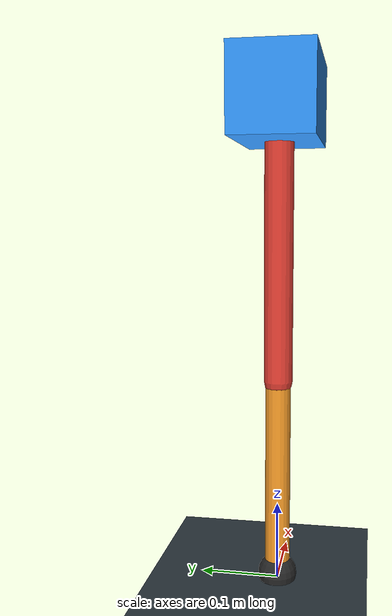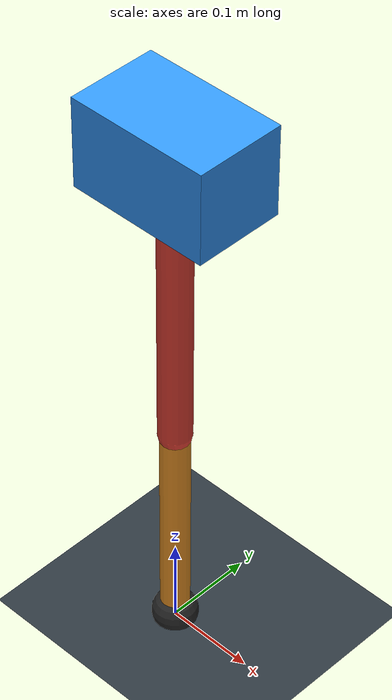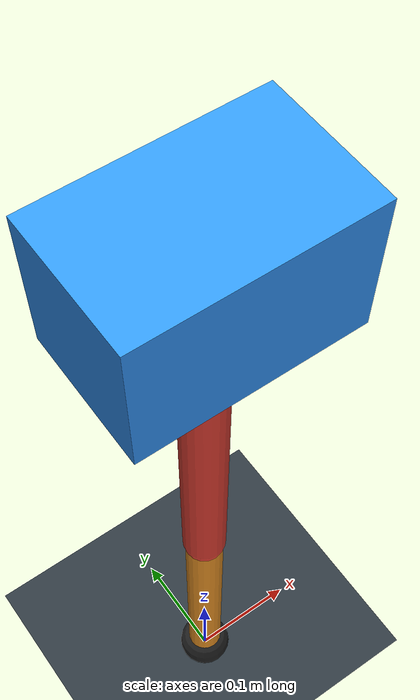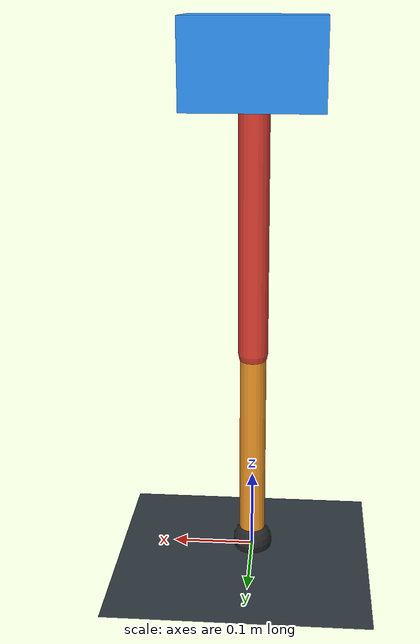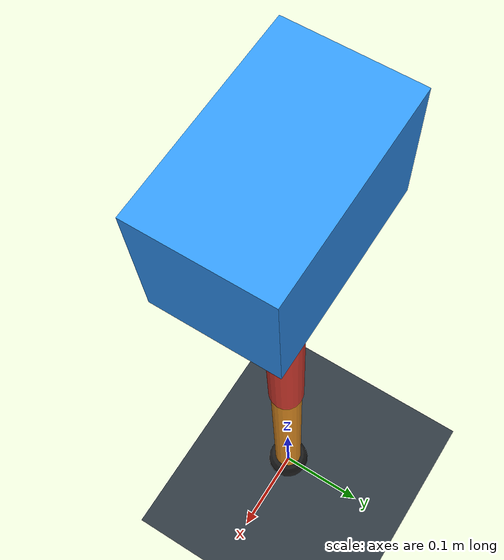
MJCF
<mujoco model="single_axis_two_bar">
  <compiler angle="radian" inertiafromgeom="true"/>
  <option timestep="0.001" integrator="implicitfast" gravity="0 0 -9.81"/>
  <default>
    <joint damping="0.08"/>
    <geom friction="1.2 0.01 0.0001" condim="3"/>
  </default>
  <worldbody>
    <geom name="floor" type="plane" size="5 5 0.1" rgba="0.18 0.22 0.25 1"/>
    <body name="carriage" pos="0 0 0.6038594306081461">
      <joint name="pole_slide" type="slide" axis="0 0 1"/>
      <geom name="payload" type="box" size="0.08 0.05 0.05" mass="3.051408264453287" rgba="0.2 0.6 1 1"/>
      <body name="thigh" pos="0 0 0">
        <joint name="hip" type="hinge" axis="0 1 0"/>
        <geom name="thigh_link" type="capsule" fromto="0 0 0 0 0 -0.341629110635498" size="0.018" mass="0.2434152555582062" rgba="0.9 0.25 0.2 1"/>
        <body name="shank" pos="0 0 -0.341629110635498">
          <joint name="knee" type="hinge" axis="0 1 0"/>
          <geom name="shank_link" type="capsule" fromto="0 0 0 0 0 -0.2551331889605289" size="0.016" mass="0.18178576842202573" rgba="0.95 0.6 0.15 1"/>
          <geom name="foot" type="sphere" pos="0 0 -0.2551331889605289" size="0.025" mass="0.03" rgba="0.15 0.15 0.15 1"/>
          <site name="toe" pos="0 0 -0.2551331889605289" size="0.008"/>
        </body>
      </body>
    </body>
  </worldbody>
  <actuator>
    <motor name="hip_motor" joint="hip" ctrlrange="-46.67335546761154 46.67335546761154"/>
    <motor name="knee_motor" joint="knee" ctrlrange="-80.39593350999498 80.39593350999498"/>
  </actuator>
</mujoco>
